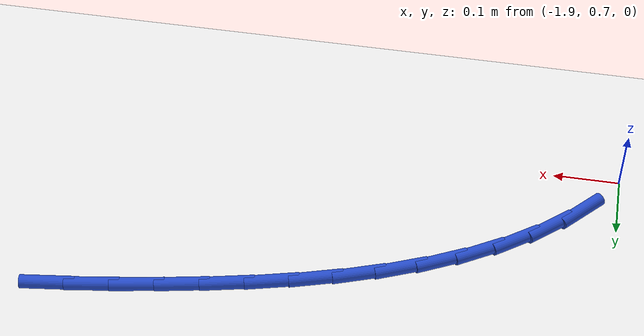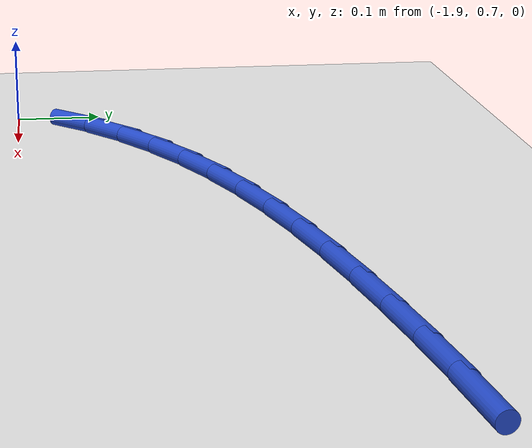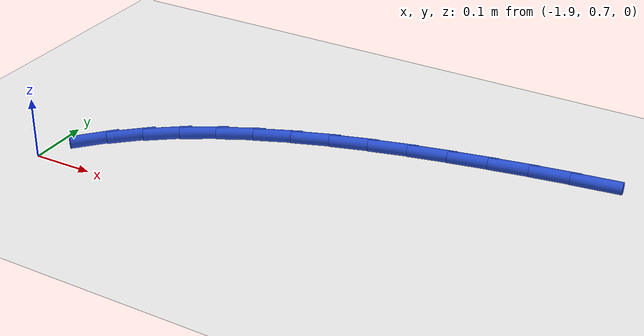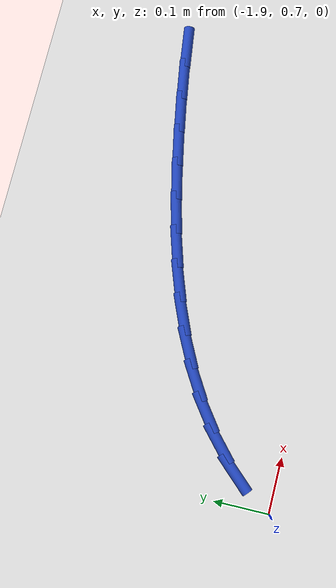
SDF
<sdf version="1.6">
 <world name="default">
  <model name="ground_plane">
   <static>1</static>
   <link name="link">
    <collision name="collision">
     <geometry><plane><normal>0 0 1</normal><size>100 100</size></plane></geometry>
     <surface><friction><ode><mu>100</mu><mu2>50</mu2></ode></friction></surface>
    </collision>
    <visual name="visual">
     <cast_shadows>0</cast_shadows>
     <geometry><plane><normal>0 0 1</normal><size>100 100</size></plane></geometry>
     <material>
      <script><uri>file://media/materials/scripts/gazebo.material</uri><name>Gazebo/WhiteGlow</name></script>
     </material>
    </visual>
   </link>
  </model>
  <model name="line">
   <link name="link_28">
    <pose>-1.0968107194790042 1.0433622053286464 0.01 0 1.57 0.13147278449249553</pose>
    <collision name="collision">
     <geometry><cylinder><radius>0.01</radius><length>0.08</length></cylinder></geometry>
    </collision>
    <visual name="visual">
     <material>
      <script><name>Gazebo/Blue</name><uri>file://media/materials/scripts/gazebo.material</uri></script>
     </material>
     <geometry><cylinder><radius>0.01</radius><length>0.08</length></cylinder></geometry>
    </visual>
   </link>
   <link name="link_29">
    <pose>-1.1606648969275866 1.0349184120795265 0.01 0 1.57 0.15782668881895248</pose>
    <collision name="collision">
     <geometry><cylinder><radius>0.01</radius><length>0.08</length></cylinder></geometry>
    </collision>
    <visual name="visual">
     <material>
      <script><name>Gazebo/Blue</name><uri>file://media/materials/scripts/gazebo.material</uri></script>
     </material>
     <geometry><cylinder><radius>0.01</radius><length>0.08</length></cylinder></geometry>
    </visual>
   </link>
   <link name="link_30">
    <pose>-1.2246084319344042 1.0247417775351328 0.01 0 1.57 0.17876136864674969</pose>
    <collision name="collision">
     <geometry><cylinder><radius>0.01</radius><length>0.08</length></cylinder></geometry>
    </collision>
    <visual name="visual">
     <material>
      <script><name>Gazebo/Blue</name><uri>file://media/materials/scripts/gazebo.material</uri></script>
     </material>
     <geometry><cylinder><radius>0.01</radius><length>0.08</length></cylinder></geometry>
    </visual>
   </link>
   <link name="link_31">
    <pose>-1.2884220785925433 1.0132112788272671 0.01 0 1.57 0.1989676557338146</pose>
    <collision name="collision">
     <geometry><cylinder><radius>0.01</radius><length>0.08</length></cylinder></geometry>
    </collision>
    <visual name="visual">
     <material>
      <script><name>Gazebo/Blue</name><uri>file://media/materials/scripts/gazebo.material</uri></script>
     </material>
     <geometry><cylinder><radius>0.01</radius><length>0.08</length></cylinder></geometry>
    </visual>
   </link>
   <link name="link_32">
    <pose>-1.3518312166114952 1.0004257458764128 0.01 0 1.57 0.2251032312961299</pose>
    <collision name="collision">
     <geometry><cylinder><radius>0.01</radius><length>0.08</length></cylinder></geometry>
    </collision>
    <visual name="visual">
     <material>
      <script><name>Gazebo/Blue</name><uri>file://media/materials/scripts/gazebo.material</uri></script>
     </material>
     <geometry><cylinder><radius>0.01</radius><length>0.08</length></cylinder></geometry>
    </visual>
   </link>
   <link name="link_33">
    <pose>-1.4144813427005603 0.9860798686689808 0.01 0 1.57 0.2580956162498743</pose>
    <collision name="collision">
     <geometry><cylinder><radius>0.01</radius><length>0.08</length></cylinder></geometry>
    </collision>
    <visual name="visual">
     <material>
      <script><name>Gazebo/Blue</name><uri>file://media/materials/scripts/gazebo.material</uri></script>
     </material>
     <geometry><cylinder><radius>0.01</radius><length>0.08</length></cylinder></geometry>
    </visual>
   </link>
   <link name="link_34">
    <pose>-1.476011732890137 0.9698368658551209 0.01 0 1.57 0.29849905531093923</pose>
    <collision name="collision">
     <geometry><cylinder><radius>0.01</radius><length>0.08</length></cylinder></geometry>
    </collision>
    <visual name="visual">
     <material>
      <script><name>Gazebo/Blue</name><uri>file://media/materials/scripts/gazebo.material</uri></script>
     </material>
     <geometry><cylinder><radius>0.01</radius><length>0.08</length></cylinder></geometry>
    </visual>
   </link>
   <link name="link_35">
    <pose>-1.536061663210626 0.9513599560849837 0.01 0 1.57 0.3469608863926642</pose>
    <collision name="collision">
     <geometry><cylinder><radius>0.01</radius><length>0.08</length></cylinder></geometry>
    </collision>
    <visual name="visual">
     <material>
      <script><name>Gazebo/Blue</name><uri>file://media/materials/scripts/gazebo.material</uri></script>
     </material>
     <geometry><cylinder><radius>0.01</radius><length>0.08</length></cylinder></geometry>
    </visual>
   </link>
   <link name="link_36">
    <pose>-1.5942704096924258 0.9303123580087198 0.01 0 1.57 0.4041695780623679</pose>
    <collision name="collision">
     <geometry><cylinder><radius>0.01</radius><length>0.08</length></cylinder></geometry>
    </collision>
    <visual name="visual">
     <material>
      <script><name>Gazebo/Blue</name><uri>file://media/materials/scripts/gazebo.material</uri></script>
     </material>
     <geometry><cylinder><radius>0.01</radius><length>0.08</length></cylinder></geometry>
    </visual>
   </link>
   <link name="link_37">
    <pose>-1.650277248365937 0.90635729027648 0.01 0 1.57 0.47076544479502913</pose>
    <collision name="collision">
     <geometry><cylinder><radius>0.01</radius><length>0.08</length></cylinder></geometry>
    </collision>
    <visual name="visual">
     <material>
      <script><name>Gazebo/Blue</name><uri>file://media/materials/scripts/gazebo.material</uri></script>
     </material>
     <geometry><cylinder><radius>0.01</radius><length>0.08</length></cylinder></geometry>
    </visual>
   </link>
   <link name="link_38">
    <pose>-1.7037214552615583 0.8791579715384145 0.01 0 1.57 0.5472007670583885</pose>
    <collision name="collision">
     <geometry><cylinder><radius>0.01</radius><length>0.08</length></cylinder></geometry>
    </collision>
    <visual name="visual">
     <material>
      <script><name>Gazebo/Blue</name><uri>file://media/materials/scripts/gazebo.material</uri></script>
     </material>
     <geometry><cylinder><radius>0.01</radius><length>0.08</length></cylinder></geometry>
    </visual>
   </link>
   <link name="link_39">
    <pose>-1.75424230640969 0.8483776204446737 0.01 0 1.57 0.6335449834865009</pose>
    <collision name="collision">
     <geometry><cylinder><radius>0.01</radius><length>0.08</length></cylinder></geometry>
    </collision>
    <visual name="visual">
     <material>
      <script><name>Gazebo/Blue</name><uri>file://media/materials/scripts/gazebo.material</uri></script>
     </material>
     <geometry><cylinder><radius>0.01</radius><length>0.08</length></cylinder></geometry>
    </visual>
   </link>
   <link name="link_40">
    <pose>-1.8014790778407312 0.8136794556454084 0.01 0 1.57 0.7292013616939688</pose>
    <collision name="collision">
     <geometry><cylinder><radius>0.01</radius><length>0.08</length></cylinder></geometry>
    </collision>
    <visual name="visual">
     <material>
      <script><name>Gazebo/Blue</name><uri>file://media/materials/scripts/gazebo.material</uri></script>
     </material>
     <geometry><cylinder><radius>0.01</radius><length>0.08</length></cylinder></geometry>
    </visual>
   </link>
   <link name="link_41">
    <pose>-1.8450730023290325 0.7747291426328448 0.01 0 1.57 0.8270786199477593</pose>
    <collision name="collision">
     <geometry><cylinder><radius>0.01</radius><length>0.08</length></cylinder></geometry>
    </collision>
    <visual name="visual">
     <material>
      <script><name>Gazebo/Blue</name><uri>file://media/materials/scripts/gazebo.material</uri></script>
     </material>
     <geometry><cylinder><radius>0.01</radius><length>0.08</length></cylinder></geometry>
    </visual>
   </link>
  </model>
 </world>
</sdf>
